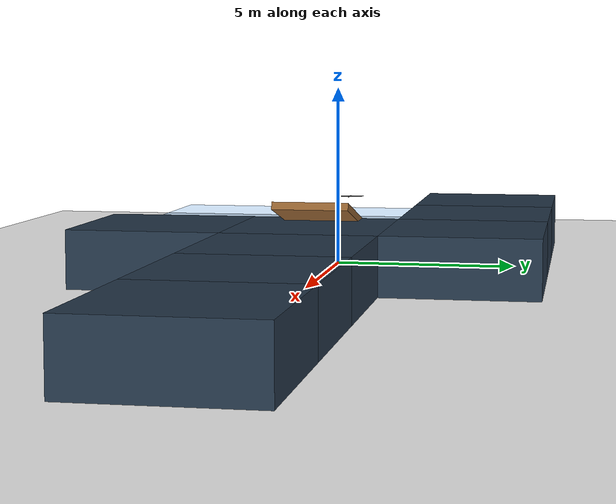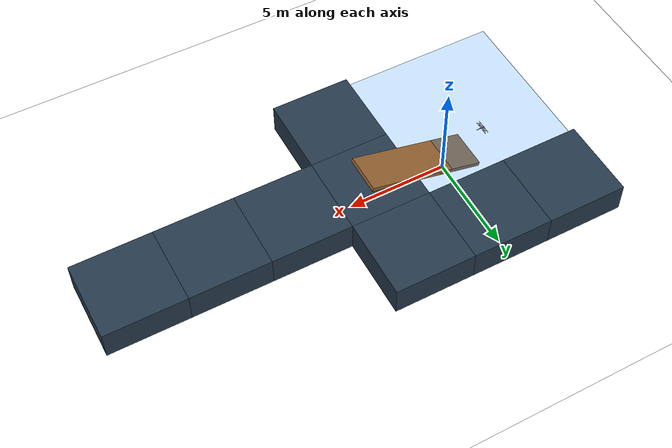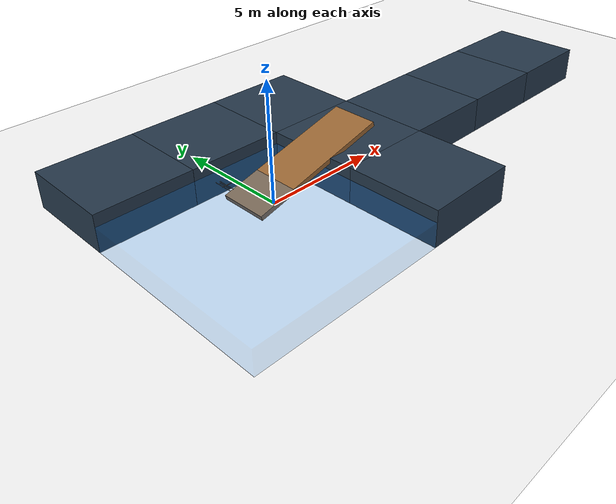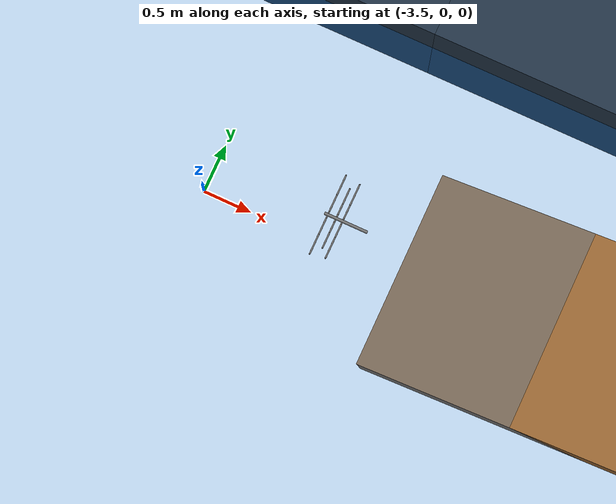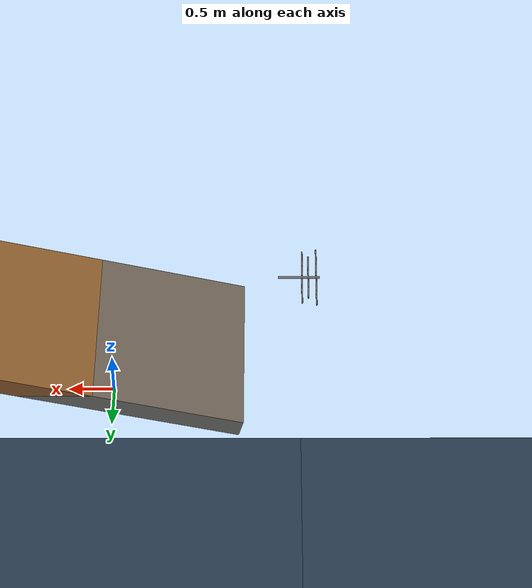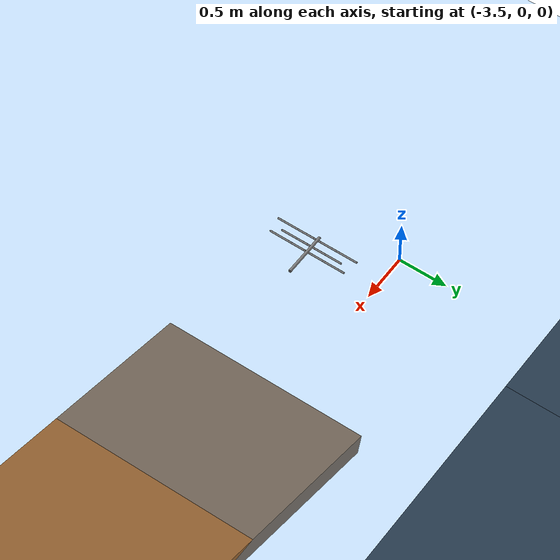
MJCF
<mujoco>
    <compiler meshdir="asset" texturedir="asset" />
    <statistic extent="1.5" meansize=".05" />
    <option timestep="0.005"  integrator="implicitfast"/>

    <!-- Float -->

    <visual>
        <rgba haze="1 1 1 1.0" />

        <quality shadowsize="4096" />
        <map stiffness="700" shadowscale="0.5" fogstart="10" fogend="15" zfar="40" haze="0.3" />
    </visual>

    <asset>
        <texture type="skybox" builtin="gradient" rgb1="0.3 0.5 0.7" rgb2="0 0 0" width="512"
            height="512" />
        <texture name="texplane" type="2d" builtin="checker" rgb1=".2 .3 .4" rgb2=".1 0.15 0.2"
            width="512" height="512" mark="cross" markrgb=".8 .8 .8" />
        <material name="matplane" reflectance="0.3" texture="texplane" texrepeat="1 1"
            texuniform="true" />
    </asset>

    <worldbody>

        <!-- Stick Insect Robot -->
        <!-- -2 0 1.5 : water-->
        <body name="stick_insect_robot" pos="-2 0 1.5">
            <!-- comment to fixed the robot on the air -->
            <freejoint name="space" />
            <inertial pos="0.004237 -0.007339 0" mass="0.253323"
                diaginertia="0.01521 0.01521 9.453e-05" />

            <geom name="Stick_insect" size="0.01375 0.21325" pos="0 0 0.225002"
                quat="-0.5 -0.5 0.5 0.5"
                type="cylinder" contype="1" conaffinity="1" />

            <body name="COXA_R0" pos="-0.17975 0.014997 0.225" quat="0.258819 2.51884e-07 2.70831e-07 0.965926">
                <inertial pos="0.004237 -0.007339 0" mass="0.1"
                    diaginertia="0.00128 0.00128 0.00064" />
                <joint name="TR0" pos="0 0 0" axis="0 0 1"
                    actuatorfrcrange="-6e+09 6e+09" damping="0.5"/>
                <geom name="COXA_R0" size="0.0075 0.008475" pos="0.004237 -0.007339 0"
                    quat="0.683005 0.68302 0.183015 0.18301" type="cylinder" contype="0"
                    conaffinity="0" />
                <body name="FEMUR_R0" pos="0.008475 -0.014679 -1e-06"
                    quat="-0.696364 -0.241844 0.664464 -0.122789">
                    <inertial pos="0.014378 -0.081542 -1e-06" mass="0.2926"
                        diaginertia="0.00374528 0.00374528 0.00187264" />
                    <joint name="CR0" pos="0 0 0" axis="0 0 1"
                        actuatorfrcrange="-6e+09 6e+09" damping="0.5"/>
                    <geom name="FEMUR_R0" size="0.0075 0.0828" pos="0.014378 -0.081542 -1e-06"
                        quat="0.45452 -0.541675 0.454519 0.541675" type="cylinder" contype="0"
                        conaffinity="0" />
                    <body name="TIBIA_R0" pos="0.028756 -0.163084 -1e-06"
                        quat="0.819152 8.0253e-08 4.55137e-07 0.573576">
                        <inertial pos="-0.150745 -0.0870406 1e-06"
                            quat="0.353539 0.353539 0.612381 0.612381" mass="0.13539"
                            diaginertia="0.00751012 0.00524516 0.00488992" />
                        <joint name="FR0" pos="0 0 0" axis="0 0 1"
                            actuatorfrcrange="-6e+09 6e+09" damping="0.5"/>
                        <geom name="TIBIA_R0" size="0.0075 0.100125" pos="-0.086705 -0.050063 1e-06"
                            quat="0.683008 -0.183029 0.683008 0.183029" type="cylinder" />
                        <geom name="FOOT_R0" size="0.0075" pos="-0.173409 -0.100127 1e-06"
                            quat="0.0944753 0.662691 -0.0871658 0.737778" friction="1.5 0.005 0.0001"/>
                    </body>
                </body>
            </body>

            <body name="COXA_L0" pos="-0.17975 -0.015004 0.225" quat="-0.000166961 -0.258819 0.965926 4.48143e-05">
                <inertial pos="0.004238 -0.00734 0" mass="0.1" diaginertia="0.00128 0.00128 0.00064" />
                <joint name="TL0" pos="0 0 0" axis="0 0 1"
                    actuatorfrcrange="-6e+09 6e+09" damping="0.5"/>
                <geom name="COXA_L0" size="0.0075 0.008475" pos="0.004238 -0.00734 0"
                    quat="-0.183013 -0.183013 0.683013 0.683013" type="cylinder" contype="0"
                    conaffinity="0" />
                <body name="FEMUR_L0" pos="0.008475 -0.01468 0"
                    quat="-0.122797 0.664467 0.241836 0.696362">
                    <inertial pos="-0.014378 0.081542 0" mass="0.2926"
                        diaginertia="0.00374528 0.00374528 0.00187264" />
                    <joint name="CL0" pos="0 0 0" axis="0 0 1"
                        actuatorfrcrange="-6e+09 6e+09" damping="0.5"/>
                    <geom name="FEMUR_L0" size="0.0075 0.0828" pos="-0.014378 0.081542 0"
                        quat="0.45452 -0.541675 0.454519 0.541675" type="cylinder" contype="0"
                        conaffinity="0" />
                    <body name="TIBIA_L0" pos="-0.028756 0.163084 0"
                        quat="-0.819152 5.77925e-07 6.16111e-07 -0.573576">
                        <inertial pos="0.150754 0.0870357 1e-06"
                            quat="0.353553 0.353553 0.612373 0.612373" mass="0.13539"
                            diaginertia="0.00859011 0.00632515 0.00596992" />
                        <joint name="FL0" pos="0 0 0" axis="0 0 1"
                            actuatorfrcrange="-6e+09 6e+09" damping="0.5"/>
                        <geom name="TIBIA_L0" size="0.0075 0.100125" pos="0.086712 0.050061 1e-06"
                            quat="0.683012 -0.183015 0.683012 0.183014" type="cylinder" />
                        <geom name="FOOT_L0" size="0.0075" pos="0.173418 0.100121 1e-06"
                            quat="-0.683013 0.183014 -0.683012 -0.183014" friction="1.5 0.005 0.0001"/>
                    </body>
                </body>
            </body>

            <body name="COXA_R1" pos="-0.09725 0.014998 0.225" quat="0 1.73205e-07 3.26795e-07 1">
                <inertial pos="0 -0.01115 0" mass="0.1" diaginertia="0.00128 0.00128 0.00064" />
                <joint name="TR1" pos="0 0 0" axis="0 0 1"
                    actuatorfrcrange="-6e+09 6e+09" damping="0.5"/>
                <geom name="COXA_R1" size="0.0075 0.01115" pos="0 -0.01115 0"
                    quat="0.7071 0.707114 1.08608e-07 3.53552e-07" type="cylinder" contype="0"
                    conaffinity="0" />
                <body name="FEMUR_R1" pos="0 -0.0223 0"
                    quat="-0.707107 2.42558e-06 0.707106 -2.42558e-06">
                    <inertial pos="0 -0.053926 0" mass="0.2926"
                        diaginertia="0.00243968 0.00243968 0.00121984" />
                    <joint name="CR1" pos="0 0 0" axis="0 0 1"
                        actuatorfrcrange="-6e+09 6e+09" damping="0.5"/>
                    <geom name="FEMUR_R1" size="0.0075 0.053925" pos="0 -0.053926 0"
                        quat="0.5 -0.5 0.499999 0.5" type="cylinder" contype="0" conaffinity="0" />
                    <body name="TIBIA_R1" pos="0 -0.107851 0"
                        quat="-0.866025 1.9641e-07 3.13398e-07 -0.5">
                        <inertial pos="-0.11837 -0.0683332 7.87216e-07"
                            quat="0.500017 -8.38036e-06 -1.45146e-05 0.866016" mass="0.13539"
                            diaginertia="0.0050643 0.00381984 0.00333438" />
                        <joint name="FR1" pos="0 0 0" axis="0 0 1"
                            actuatorfrcrange="-6e+09 6e+09" damping="0.5"/>
                        <geom name="TIBIA_R1" size="0.0075 0.076475" pos="-0.066232 -0.038234 0"
                            quat="0.683017 -0.182997 0.683017 0.182997" type="cylinder" />
                        <geom name="FOOT_R1" size="0.0075" pos="-0.132463 -0.076469 1e-06"
                            quat="-0.182997 -0.683017 -0.182997 0.683017" friction="1.5 0.005 0.0001"/>
                    </body>
                </body>
            </body>

            <body name="COXA_L1" pos="-0.097249 -0.015002 0.225"
                quat="5e-07 1 3.26795e-07 -3.26795e-07">
                <inertial pos="0 0.01115 0" mass="0.1" diaginertia="0.00128 0.00128 0.00064" />
                <joint name="TL1" pos="0 0 0" axis="0 0 1"
                    actuatorfrcrange="-6e+09 6e+09" damping="0.5"/>
                <geom name="COXA_L1" size="0.0075 0.01115" pos="0 0.01115 0"
                    quat="0.707107 0.707107 -2.44949e-07 0" type="cylinder" contype="0"
                    conaffinity="0" />
                <body name="FEMUR_L1" pos="0 0.0223 0"
                    quat="-0.707107 9.18448e-06 0.707107 -9.18448e-06">
                    <inertial pos="0 0.053925 0" mass="0.2926"
                        diaginertia="0.00243968 0.00243968 0.00121984" />
                    <joint name="CL1" pos="0 0 0" axis="0 0 1"
                        actuatorfrcrange="-6e+09 6e+09" damping="0.5"/>
                    <geom name="FEMUR_L1" size="0.0075 0.053925" pos="0 0.053925 0"
                        quat="0.5 -0.5 0.499999 0.5" type="cylinder" contype="0" conaffinity="0" />
                    <body name="TIBIA_L1" pos="0 0.10785 0"
                        quat="0.866025 -6.33973e-08 -2.36603e-07 0.5">
                        <inertial pos="0.11871 0.068529 1.48077e-10" quat="0.500017 0 0 0.866016"
                            mass="0.13539" diaginertia="0.00508063 0.00381984 0.00335071" />
                        <joint name="FL1" pos="0 0 0" axis="0 0 1"
                            actuatorfrcrange="-6e+09 6e+09" damping="0.5"/>
                        <geom name="TIBIA_L1" size="0.0075 0.076475" pos="0.066231 0.038233 0"
                            quat="0.683016 -0.182999 0.683016 0.183" type="cylinder" />
                        <geom name="FOOT_L1" size="0.0075" pos="0.132895 0.076718 1.88102e-10"
                            quat="-0.683016 0.182998 -0.683016 -0.183" friction="1.5 0.005 0.0001"/>
                    </body>
                </body>
            </body>

            <body name="COXA_R2" pos="-0.032748 0.014996 0.224999"
                quat="-0.340226 5.16883e-08 3.66228e-07 0.940344">
                <inertial pos="-0.004934 -0.005879 0" mass="0.1"
                    diaginertia="0.00128 0.00128 0.00064" />
                <joint name="TR2" pos="0 0 0" axis="0 0 1"
                    actuatorfrcrange="-6e+09 6e+09" damping="0.5"/>
                <geom name="COXA_R2" size="0.0075 0.007675" pos="-0.004934 -0.005879 0"
                    quat="-0.664457 -0.664469 0.241847 0.241842" type="cylinder" contype="0"
                    conaffinity="0" />
                <body name="FEMUR_R2" pos="-0.009867 -0.011759 0"
                    quat="-0.640857 0.183015 0.683013 0.298834">
                    <inertial pos="0.011487 -0.065145 0" mass="0.2926"
                        diaginertia="0.00299264 0.00299264 0.00149632" />
                    <joint name="CR2" pos="0 0 0" axis="0 0 1"
                        actuatorfrcrange="-6e+09 6e+09" damping="0.5"/>
                    <geom name="FEMUR_R2" size="0.0075 0.06615" pos="0.011487 -0.065145 0"
                        quat="0.454519 -0.541676 0.454519 0.541676" type="cylinder" contype="0"
                        conaffinity="0" />
                    <body name="TIBIA_R2" pos="0.022974 -0.13029 0"
                        quat="0.819152 -4.25348e-08 -2.41228e-07 0.573577">
                        <inertial pos="-0.157195 -0.09074 0"
                            quat="0.353579 0.353579 0.612357 0.612357"
                            mass="0.13539" diaginertia="0.0080875 0.00571374 0.00510752" />
                        <joint name="FR2" pos="0 0 0" axis="0 0 1"
                            actuatorfrcrange="-6e+09 6e+09" damping="0.5"/>
                        <geom name="TIBIA_R2" size="0.0075 0.10495" pos="-0.090893 -0.052468 0"
                            quat="0.68302 -0.182987 0.68302 0.182986" type="cylinder" />
                        <geom name="FOOT_R2" size="0.0075" pos="-0.181786 -0.104935 0"
                            quat="0.182986 0.68302 0.182986 -0.68302" friction="1.5 0.005 0.0001"/>
                    </body>
                </body>
            </body>

            <body name="COXA_L2" pos="-0.032749 -0.015004 0.225"
                quat="-5.29069e-07 -0.939038 0.343813 9.26051e-09">
                <inertial pos="0.004934 0.005879 0" mass="0.1" diaginertia="0.00128 0.00128 0.00064" />
                <joint name="TL2" pos="0 0 0" axis="0 0 1"
                    actuatorfrcrange="-6e+09 6e+09" damping="0.5"/>
                <geom name="COXA_L2" size="0.0075 0.007675" pos="0.004934 0.005879 0"
                    quat="-0.664453 -0.664473 0.241849 0.241841" type="cylinder" contype="0"
                    conaffinity="0" />
                <body name="FEMUR_L2" pos="0.009867 0.011759 0"
                    quat="-0.640855 0.183011 0.683014 0.298838">
                    <inertial pos="-0.011487 0.065145 0" mass="0.2926"
                        diaginertia="0.00299264 0.00299264 0.00149632" />
                    <joint name="CL2" pos="0 0 0" axis="0 0 1"
                        actuatorfrcrange="-6e+09 6e+09" damping="0.5"/>
                    <geom name="FEMUR_L2" size="0.0075 0.06615" pos="-0.011487 0.065145 0"
                        quat="0.454519 -0.541675 0.454519 0.541675" type="cylinder" contype="0"
                        conaffinity="0" />
                    <body name="TIBIA_L2" pos="-0.022974 0.13029 0"
                        quat="-0.819152 4.55137e-07 -8.02528e-08 -0.573577">
                        <inertial pos="0.157193 0.0907439 0"
                            quat="0.353566 0.353566 0.612365 0.612365"
                            mass="0.13539" diaginertia="0.00808748 0.00571372 0.00510752" />
                        <joint name="FL2" pos="0 0 0" axis="0 0 1"
                            actuatorfrcrange="-6e+09 6e+09" damping="0.5"/>
                        <geom name="TIBIA_L2" size="0.0075 0.10495" pos="0.090893 0.052469 0"
                            quat="0.683017 -0.182998 0.683017 0.182999" type="cylinder" />
                        <geom name="FOOT_L2" size="0.0075" pos="0.181784 0.10494 0"
                            quat="-0.683017 0.182998 -0.683016 -0.182999" friction="1.5 0.005 0.0001"/>
                    </body>
                </body>
            </body>
        </body>

        <!-- Water Space -->
        <geom name="water_space" type="box" size="4 4 1" pos="-2 -2 0.0"
            rgba="0 0.5 1 0.2" conaffinity="0" contype="0"/>

        <!-- Environment Ground -->

        <geom name="ground_1" type="box" size="2 2 1" pos="4 0 0.5" quat="1 0 0 0" material="matplane"
            condim="1" friction="1.5 0.005 0.0001" contype="1"/>
        <geom name="ground_3" type="box" size="2 2 1" pos="0 4 0.5" quat="1 0 0 0" material="matplane"
            condim="1" friction="1.5 0.005 0.0001"/>

        <geom name="ground_5" type="box" size="2 2 1" pos="4 4 0.5" quat="1 0 0 0" material="matplane"
            condim="1" friction="1.5 0.005 0.0001"/>
        <geom name="ground_6" type="box" size="2 2 1" pos="-4 4 0.5" quat="1 0 0 0" material="matplane"
            condim="1" friction="1.5 0.005 0.0001"/>
        <geom name="ground_7" type="box" size="2 2 1" pos="4 -4 0.5" quat="1 0 0 0" material="matplane"
            condim="1" friction="1.5 0.005 0.0001"/>
        <geom name="ground_9" type="box" size="2 2 1" pos="8 0 0.5" quat="1 0 0 0" material="matplane"
            condim="1" friction="1.5 0.005 0.0001"/>
        <geom name="ground_10" type="box" size="2 2 1" pos="12 0 0.5" quat="1 0 0 0" material="matplane"
            condim="1" friction="1.5 0.005 0.0001"/>
        <geom name="ground_11" type="box" size="2 2 1" pos="16 0 0.5" quat="1 0 0 0" material="matplane"
            condim="1" friction="1.5 0.005 0.0001"/>

        <geom name="ground" type="plane" size="0 0 1" pos="0 0 0" quat="1 0 0 0"
            condim="1" friction="1.5 0.005 0.0001" rgba="1 1 1 1"/>

        <geom name="ramp" type="box" size="3.0 1.0 0.1" pos="1.5 0 1.265" euler="0 -15 0"
                rgba="0.6 0.4 0.2 1" friction="1.5 0.005 0.0001"/>

        <!-- Light settings -->
        <light directional="true" diffuse=".4 .4 .4" specular="0.1 0.1 0.1" pos="0 0 5.0"
            dir="0 0 -1" castshadow="false" />
        <light directional="true" diffuse=".6 .6 .6" specular="0.2 0.2 0.2" pos="0 0 4" dir="0 0 -1" />

    </worldbody>

    <actuator>
        <motor name="TR0" joint="TR0" ctrllimited="true" ctrlrange="-10 10"/>
        <motor name="CR0" joint="CR0" ctrllimited="true" ctrlrange="-10 10"/>
        <motor name="FR0" joint="FR0" ctrllimited="true" ctrlrange="-10 10"/>

        <motor name="TR1" joint="TR1" ctrllimited="true" ctrlrange="-10 10"/>
        <motor name="CR1" joint="CR1" ctrllimited="true" ctrlrange="-10 10"/>
        <motor name="FR1" joint="FR1" ctrllimited="true" ctrlrange="-10 10"/>

        <motor name="TR2" joint="TR2" ctrllimited="true" ctrlrange="-10 10"/>
        <motor name="CR2" joint="CR2" ctrllimited="true" ctrlrange="-10 10"/>
        <motor name="FR2" joint="FR2" ctrllimited="true" ctrlrange="-10 10"/>

        <motor name="TL0" joint="TL0" ctrllimited="true" ctrlrange="-10 10"/>
        <motor name="CL0" joint="CL0" ctrllimited="true" ctrlrange="-10 10"/>
        <motor name="FL0" joint="FL0" ctrllimited="true" ctrlrange="-10 10"/>

        <motor name="TL1" joint="TL1" ctrllimited="true" ctrlrange="-10 10"/>
        <motor name="CL1" joint="CL1" ctrllimited="true" ctrlrange="-10 10"/>
        <motor name="FL1" joint="FL1" ctrllimited="true" ctrlrange="-10 10"/>

        <motor name="TL2" joint="TL2" ctrllimited="true" ctrlrange="-10 10"/>
        <motor name="CL2" joint="CL2" ctrllimited="true" ctrlrange="-10 10"/>
        <motor name="FL2" joint="FL2" ctrllimited="true" ctrlrange="-10 10"/>
    </actuator>
</mujoco>
